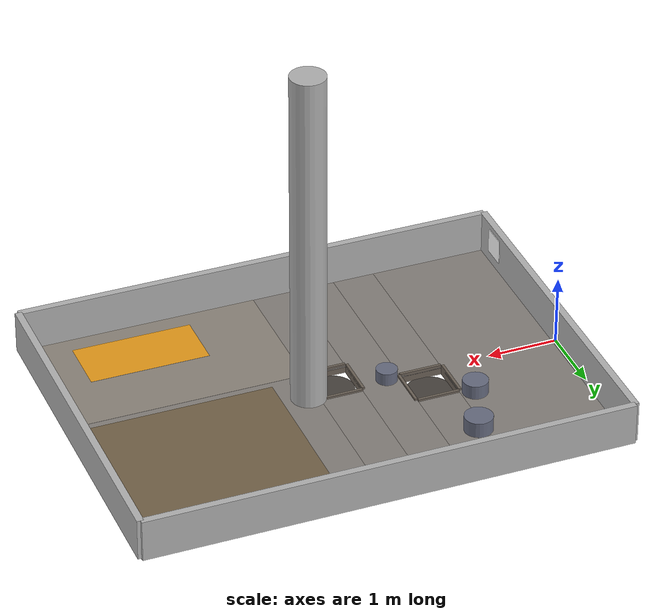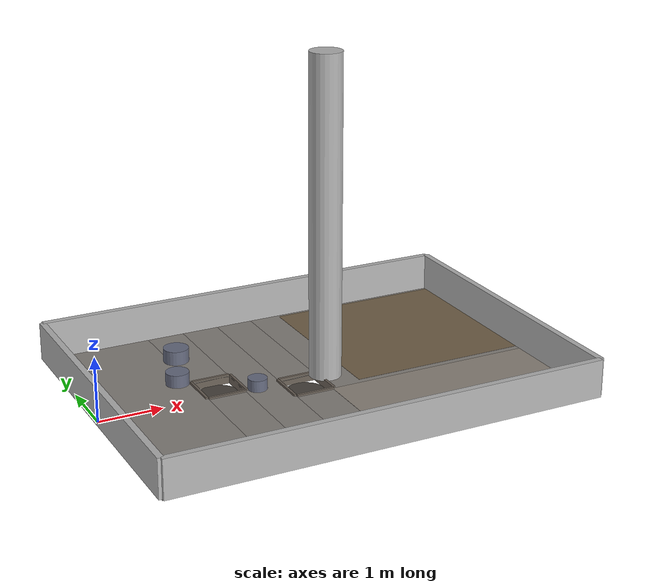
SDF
<?xml version="1.0" ?>
<sdf version="1.6">
  <world name="lunabotics_easy">

    <!-- ==================== PHYSICS ==================== -->
    <physics type="ode">
      <max_step_size>0.001</max_step_size>
      <real_time_factor>1.0</real_time_factor>
      <real_time_update_rate>1000</real_time_update_rate>
      <gravity>0 0 -1.62</gravity>  <!-- Moon gravity -->
    </physics>

    <!-- ==================== LIGHTING ==================== -->
    <include>
      <uri>model://sun</uri>
    </include>

    <scene>
      <ambient>0.3 0.3 0.3 1</ambient>
      <background>0.0 0.0 0.0 1</background>
      <shadows>true</shadows>
    </scene>

    <!-- ==================== ARENA FRAME ==================== -->
    <include>
      <uri>model://arena_frame_nasa</uri>
      <pose>0 0 0 0 0 0</pose>
    </include>

    <!-- ==================== APRILTAG BOARD ==================== -->
    <!-- Mounted on the start-zone wall for initial absolute position fix -->
    <include>
      <uri>model://apriltag_board</uri>
      <pose>0.05 -2.0 0.34 0 1.57 0</pose>
    </include>

    <!-- ==================== GROUND (TILED — with crater gaps) ==================== -->

    <!-- Segment 1: x=[0.00, 1.70], y=[-2.5, 2.5]  (left slab, full width) -->
    <model name="ground_seg_1">
      <static>true</static>
      <pose>0.85 0 -0.01 0 0 0</pose>
      <link name="link">
        <collision name="col"><geometry><box><size>1.70 5.0 0.02</size></box></geometry>
          <surface><friction><ode><mu>0.8</mu><mu2>0.8</mu2></ode></friction></surface>
        </collision>
        <visual name="vis"><geometry><box><size>1.70 5.0 0.02</size></box></geometry>
          <material><ambient>0.42 0.40 0.38 1</ambient><diffuse>0.52 0.50 0.48 1</diffuse></material>
        </visual>
      </link>
    </model>

    <!-- Segment 2: x=[1.70, 2.30], y=[-2.5, 0.00]  (below crater 1 gap) -->
    <model name="ground_seg_2">
      <static>true</static>
      <pose>2.0 -1.25 -0.01 0 0 0</pose>
      <link name="link">
        <collision name="col"><geometry><box><size>0.60 2.50 0.02</size></box></geometry>
          <surface><friction><ode><mu>0.8</mu><mu2>0.8</mu2></ode></friction></surface>
        </collision>
        <visual name="vis"><geometry><box><size>0.60 2.50 0.02</size></box></geometry>
          <material><ambient>0.42 0.40 0.38 1</ambient><diffuse>0.52 0.50 0.48 1</diffuse></material>
        </visual>
      </link>
    </model>

    <!-- Segment 3: x=[1.70, 2.30], y=[0.60, 2.5]  (above crater 1 gap) -->
    <model name="ground_seg_3">
      <static>true</static>
      <pose>2.0 1.55 -0.01 0 0 0</pose>
      <link name="link">
        <collision name="col"><geometry><box><size>0.60 1.90 0.02</size></box></geometry>
          <surface><friction><ode><mu>0.8</mu><mu2>0.8</mu2></ode></friction></surface>
        </collision>
        <visual name="vis"><geometry><box><size>0.60 1.90 0.02</size></box></geometry>
          <material><ambient>0.42 0.40 0.38 1</ambient><diffuse>0.52 0.50 0.48 1</diffuse></material>
        </visual>
      </link>
    </model>

    <!-- Segment 4: x=[2.30, 2.90], y=[-2.5, 2.5]  (middle slab, between craters) -->
    <model name="ground_seg_4">
      <static>true</static>
      <pose>2.60 0 -0.01 0 0 0</pose>
      <link name="link">
        <collision name="col"><geometry><box><size>0.60 5.0 0.02</size></box></geometry>
          <surface><friction><ode><mu>0.8</mu><mu2>0.8</mu2></ode></friction></surface>
        </collision>
        <visual name="vis"><geometry><box><size>0.60 5.0 0.02</size></box></geometry>
          <material><ambient>0.42 0.40 0.38 1</ambient><diffuse>0.52 0.50 0.48 1</diffuse></material>
        </visual>
      </link>
    </model>

    <!-- Segment 5: x=[2.90, 3.50], y=[-2.5, -0.50]  (below crater 2 gap) -->
    <model name="ground_seg_5">
      <static>true</static>
      <pose>3.20 -1.50 -0.01 0 0 0</pose>
      <link name="link">
        <collision name="col"><geometry><box><size>0.60 2.00 0.02</size></box></geometry>
          <surface><friction><ode><mu>0.8</mu><mu2>0.8</mu2></ode></friction></surface>
        </collision>
        <visual name="vis"><geometry><box><size>0.60 2.00 0.02</size></box></geometry>
          <material><ambient>0.42 0.40 0.38 1</ambient><diffuse>0.52 0.50 0.48 1</diffuse></material>
        </visual>
      </link>
    </model>

    <!-- Segment 6: x=[2.90, 3.50], y=[0.10, 2.5]  (above crater 2 gap) -->
    <model name="ground_seg_6">
      <static>true</static>
      <pose>3.20 1.30 -0.01 0 0 0</pose>
      <link name="link">
        <collision name="col"><geometry><box><size>0.60 2.40 0.02</size></box></geometry>
          <surface><friction><ode><mu>0.8</mu><mu2>0.8</mu2></ode></friction></surface>
        </collision>
        <visual name="vis"><geometry><box><size>0.60 2.40 0.02</size></box></geometry>
          <material><ambient>0.42 0.40 0.38 1</ambient><diffuse>0.52 0.50 0.48 1</diffuse></material>
        </visual>
      </link>
    </model>

    <!-- Segment 7: x=[3.50, 6.88], y=[-2.5, 2.5]  (right slab, full width) -->
    <model name="ground_seg_7">
      <static>true</static>
      <pose>5.19 0 -0.01 0 0 0</pose>
      <link name="link">
        <collision name="col"><geometry><box><size>3.38 5.0 0.02</size></box></geometry>
          <surface><friction><ode><mu>0.8</mu><mu2>0.8</mu2></ode></friction></surface>
        </collision>
        <visual name="vis"><geometry><box><size>3.38 5.0 0.02</size></box></geometry>
          <material><ambient>0.42 0.40 0.38 1</ambient><diffuse>0.52 0.50 0.48 1</diffuse></material>
        </visual>
      </link>
    </model>

    <!-- ==================== ZONE MARKERS (visual only) ==================== -->

    <!-- Excavation zone — brownish regolith -->
    <model name="excavation_zone">
      <static>true</static>
      <pose>5.44 1.0 0.001 0 0 0</pose>
      <link name="link">
        <visual name="vis">
          <geometry><box><size>2.88 2.80 0.002</size></box></geometry>
          <material><ambient>0.35 0.28 0.20 1</ambient><diffuse>0.45 0.38 0.28 1</diffuse></material>
        </visual>
      </link>
    </model>

    <!-- Construction zone / berm area — slightly lighter -->
    <model name="construction_zone">
      <static>true</static>
      <pose>5.19 -1.5 0.001 0 0 0</pose>
      <link name="link">
        <visual name="vis">
          <geometry><box><size>3.38 2.0 0.002</size></box></geometry>
          <material><ambient>0.45 0.42 0.38 1</ambient><diffuse>0.55 0.52 0.48 1</diffuse></material>
        </visual>
      </link>
    </model>

    <!-- Berm target marker -->
    <model name="berm_target">
      <static>true</static>
      <pose>5.38 -1.8 0.002 0 0 0</pose>
      <link name="link">
        <visual name="vis">
          <geometry><box><size>1.70 0.80 0.004</size></box></geometry>
          <material><ambient>0.8 0.5 0.1 1</ambient><diffuse>0.9 0.6 0.1 1</diffuse></material>
        </visual>
      </link>
    </model>

    <!-- ==================== ROCKS ==================== -->
    <!--
      Per competition spec: cylinders, 30-40 cm diameter, 15-25 cm tall.
      Placed in the obstacle zone.  z_center = height/2 (sitting on ground).
    -->

    <!-- Rock 1: x=1.5, y=0.7 — r=0.18m, h=0.20m (blue-grey) -->
    <model name="rock_1">
      <static>true</static>
      <pose>1.5 0.7 0.10 0 0 0.4</pose>
      <link name="link">
        <collision name="col">
          <geometry><cylinder><radius>0.18</radius><length>0.20</length></cylinder></geometry>
        </collision>
        <visual name="vis">
          <geometry><cylinder><radius>0.18</radius><length>0.20</length></cylinder></geometry>
          <material>
            <ambient>0.30 0.32 0.38 1</ambient>
            <diffuse>0.40 0.42 0.50 1</diffuse>
            <specular>0.05 0.05 0.05 1</specular>
          </material>
        </visual>
      </link>
    </model>

    <!-- Rock 2: x=2.5, y=0.0 — r=0.15m, h=0.18m (blue-grey) -->
    <model name="rock_2">
      <static>true</static>
      <pose>2.5 0.0 0.09 0 0 1.1</pose>
      <link name="link">
        <collision name="col">
          <geometry><cylinder><radius>0.15</radius><length>0.18</length></cylinder></geometry>
        </collision>
        <visual name="vis">
          <geometry><cylinder><radius>0.15</radius><length>0.18</length></cylinder></geometry>
          <material>
            <ambient>0.30 0.32 0.38 1</ambient>
            <diffuse>0.40 0.42 0.50 1</diffuse>
            <specular>0.05 0.05 0.05 1</specular>
          </material>
        </visual>
      </link>
    </model>

    <!-- Rock 3: x=1.8, y=1.5 — r=0.20m, h=0.22m (blue-grey) -->
    <model name="rock_3">
      <static>true</static>
      <pose>1.8 1.5 0.11 0 0 2.3</pose>
      <link name="link">
        <collision name="col">
          <geometry><cylinder><radius>0.20</radius><length>0.22</length></cylinder></geometry>
        </collision>
        <visual name="vis">
          <geometry><cylinder><radius>0.20</radius><length>0.22</length></cylinder></geometry>
          <material>
            <ambient>0.30 0.32 0.38 1</ambient>
            <diffuse>0.40 0.42 0.50 1</diffuse>
            <specular>0.05 0.05 0.05 1</specular>
          </material>
        </visual>
      </link>
    </model>

    <!-- ==================== CRATERS ==================== -->

    <!--
      CRATER 1 — center (2.0, 0.3), radius≈0.25m, depth=0.12m
      Ground gap: x=[1.70, 2.30], y=[0.00, 0.60]
    -->

    <!-- Crater 1 floor (wider than gap so angled LiDAR rays hit it) -->
    <model name="crater_1_floor">
      <static>true</static>
      <pose>2.0 0.30 -0.12 0 0 0</pose>
      <link name="link">
        <collision name="col">
          <geometry><cylinder><radius>0.32</radius><length>0.02</length></cylinder></geometry>
        </collision>
        <visual name="vis">
          <geometry><cylinder><radius>0.32</radius><length>0.02</length></cylinder></geometry>
          <material>
            <ambient>0.22 0.20 0.18 1</ambient>
            <diffuse>0.28 0.26 0.24 1</diffuse>
          </material>
        </visual>
      </link>
    </model>

    <!-- Crater 1 walls (4 thin boxes forming the rim, z from -0.12 to +0.03) -->
    <model name="crater_1_wall_north">
      <static>true</static>
      <pose>2.0 0.62 -0.045 0 0 0</pose>
      <link name="link">
        <collision name="col"><geometry><box><size>0.60 0.04 0.15</size></box></geometry></collision>
        <visual name="vis">
          <geometry><box><size>0.60 0.04 0.15</size></box></geometry>
          <material><ambient>0.35 0.32 0.28 1</ambient><diffuse>0.42 0.38 0.34 1</diffuse></material>
        </visual>
      </link>
    </model>
    <model name="crater_1_wall_south">
      <static>true</static>
      <pose>2.0 -0.02 -0.045 0 0 0</pose>
      <link name="link">
        <collision name="col"><geometry><box><size>0.60 0.04 0.15</size></box></geometry></collision>
        <visual name="vis">
          <geometry><box><size>0.60 0.04 0.15</size></box></geometry>
          <material><ambient>0.35 0.32 0.28 1</ambient><diffuse>0.42 0.38 0.34 1</diffuse></material>
        </visual>
      </link>
    </model>
    <model name="crater_1_wall_east">
      <static>true</static>
      <pose>2.32 0.30 -0.045 0 0 0</pose>
      <link name="link">
        <collision name="col"><geometry><box><size>0.04 0.60 0.15</size></box></geometry></collision>
        <visual name="vis">
          <geometry><box><size>0.04 0.60 0.15</size></box></geometry>
          <material><ambient>0.35 0.32 0.28 1</ambient><diffuse>0.42 0.38 0.34 1</diffuse></material>
        </visual>
      </link>
    </model>
    <model name="crater_1_wall_west">
      <static>true</static>
      <pose>1.68 0.30 -0.045 0 0 0</pose>
      <link name="link">
        <collision name="col"><geometry><box><size>0.04 0.60 0.15</size></box></geometry></collision>
        <visual name="vis">
          <geometry><box><size>0.04 0.60 0.15</size></box></geometry>
          <material><ambient>0.35 0.32 0.28 1</ambient><diffuse>0.42 0.38 0.34 1</diffuse></material>
        </visual>
      </link>
    </model>

    <!--
      CRATER 2 — center (3.2, -0.2), radius≈0.22m, depth=0.11m
      Ground gap: x=[2.90, 3.50], y=[-0.50, 0.10]
    -->

    <!-- Crater 2 floor -->
    <model name="crater_2_floor">
      <static>true</static>
      <pose>3.2 -0.20 -0.11 0 0 0</pose>
      <link name="link">
        <collision name="col">
          <geometry><cylinder><radius>0.30</radius><length>0.02</length></cylinder></geometry>
        </collision>
        <visual name="vis">
          <geometry><cylinder><radius>0.30</radius><length>0.02</length></cylinder></geometry>
          <material>
            <ambient>0.22 0.20 0.18 1</ambient>
            <diffuse>0.28 0.26 0.24 1</diffuse>
          </material>
        </visual>
      </link>
    </model>

    <!-- Crater 2 walls -->
    <model name="crater_2_wall_north">
      <static>true</static>
      <pose>3.2 0.12 -0.040 0 0 0</pose>
      <link name="link">
        <collision name="col"><geometry><box><size>0.60 0.04 0.14</size></box></geometry></collision>
        <visual name="vis">
          <geometry><box><size>0.60 0.04 0.14</size></box></geometry>
          <material><ambient>0.35 0.32 0.28 1</ambient><diffuse>0.42 0.38 0.34 1</diffuse></material>
        </visual>
      </link>
    </model>
    <model name="crater_2_wall_south">
      <static>true</static>
      <pose>3.2 -0.52 -0.040 0 0 0</pose>
      <link name="link">
        <collision name="col"><geometry><box><size>0.60 0.04 0.14</size></box></geometry></collision>
        <visual name="vis">
          <geometry><box><size>0.60 0.04 0.14</size></box></geometry>
          <material><ambient>0.35 0.32 0.28 1</ambient><diffuse>0.42 0.38 0.34 1</diffuse></material>
        </visual>
      </link>
    </model>
    <model name="crater_2_wall_east">
      <static>true</static>
      <pose>3.52 -0.20 -0.040 0 0 0</pose>
      <link name="link">
        <collision name="col"><geometry><box><size>0.04 0.60 0.14</size></box></geometry></collision>
        <visual name="vis">
          <geometry><box><size>0.04 0.60 0.14</size></box></geometry>
          <material><ambient>0.35 0.32 0.28 1</ambient><diffuse>0.42 0.38 0.34 1</diffuse></material>
        </visual>
      </link>
    </model>
    <model name="crater_2_wall_west">
      <static>true</static>
      <pose>2.88 -0.20 -0.040 0 0 0</pose>
      <link name="link">
        <collision name="col"><geometry><box><size>0.04 0.60 0.14</size></box></geometry></collision>
        <visual name="vis">
          <geometry><box><size>0.04 0.60 0.14</size></box></geometry>
          <material><ambient>0.35 0.32 0.28 1</ambient><diffuse>0.42 0.38 0.34 1</diffuse></material>
        </visual>
      </link>
    </model>

  </world>
</sdf>

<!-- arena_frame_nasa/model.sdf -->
<sdf version='1.7'>
  <model name='arena_frame_nasa'>
    <pose>0 0 0 0 0 0</pose>
    <static>true</static>

    <!-- Left Wall -->
    <link name='left_wall'>
      <pose>0 0 0.3 0 0 0</pose>
      <collision name='collision'>
        <geometry>
          <box>
            <size>0.1 5.0 0.6</size>
          </box>
        </geometry>
      </collision>
      <visual name='visual'>
        <geometry>
          <box>
            <size>0.1 5.0 0.6</size>
          </box>
        </geometry>
        <material>
          <ambient>0.7 0.7 0.7 1</ambient>
          <diffuse>0.7 0.7 0.7 1</diffuse>
        </material>
      </visual>
    </link>

    <!-- Right Wall -->
    <link name='right_wall'>
      <pose>6.88 0 0.3 0 0 0</pose>
      <collision name='collision'>
        <geometry>
          <box>
            <size>0.1 5.0 0.6</size>
          </box>
        </geometry>
      </collision>
      <visual name='visual'>
        <geometry>
          <box>
            <size>0.1 5.0 0.6</size>
          </box>
        </geometry>
        <material>
          <ambient>0.7 0.7 0.7 1</ambient>
          <diffuse>0.7 0.7 0.7 1</diffuse>
        </material>
      </visual>
    </link>

    <!-- Top Wall -->
    <link name='top_wall'>
      <pose>3.44 2.5 0.3 0 0 0</pose>
      <collision name='collision'>
        <geometry>
          <box>
            <size>6.88 0.1 0.6</size>
          </box>
        </geometry>
      </collision>
      <visual name='visual'>
        <geometry>
          <box>
            <size>6.88 0.1 0.6</size>
          </box>
        </geometry>
        <material>
          <ambient>0.7 0.7 0.7 1</ambient>
          <diffuse>0.7 0.7 0.7 1</diffuse>
        </material>
      </visual>
    </link>

    <!-- Bottom Wall -->
    <link name='bottom_wall'>
      <pose>3.44 -2.5 0.3 0 0 0</pose>
      <collision name='collision'>
        <geometry>
          <box>
            <size>6.88 0.1 0.6</size>
          </box>
        </geometry>
      </collision>
      <visual name='visual'>
        <geometry>
          <box>
            <size>6.88 0.1 0.6</size>
          </box>
        </geometry>
        <material>
          <ambient>0.7 0.7 0.7 1</ambient>
          <diffuse>0.7 0.7 0.7 1</diffuse>
        </material>
      </visual>
    </link>

    <!-- Center Pole -->
    <link name='center_pole'>
      <pose>3.63 0 2.5 0 0 0</pose>
      <collision name='collision'>
        <geometry>
          <cylinder>
            <radius>0.25</radius>
            <length>5.0</length>
          </cylinder>
        </geometry>
      </collision>
      <visual name='visual'>
        <geometry>
          <cylinder>
            <radius>0.25</radius>
            <length>5.0</length>
          </cylinder>
        </geometry>
        <material>
          <ambient>0.7 0.7 0.7 1</ambient>
          <diffuse>0.7 0.7 0.7 1</diffuse>
        </material>
      </visual>
    </link>
  </model>
</sdf>

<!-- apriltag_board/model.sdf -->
<sdf version='1.7'>
  <model name='apriltag_board'>
    <pose>0 0 0.5 0 1.57 0</pose>
    <static>true</static>

    <link name='board'>
      <visual name='visual'>
        <geometry>
          <box>
            <size>0.36 0.36 0.02</size>
          </box>
        </geometry>
        <material>
          <ambient>1 1 1 1</ambient>
          <diffuse>1 1 1 1</diffuse>
        </material>
      </visual>
      <collision name='collision'>
        <geometry>
          <box>
            <size>0.36 0.36 0.02</size>
          </box>
        </geometry>
      </collision>
    </link>
  </model>
</sdf>
